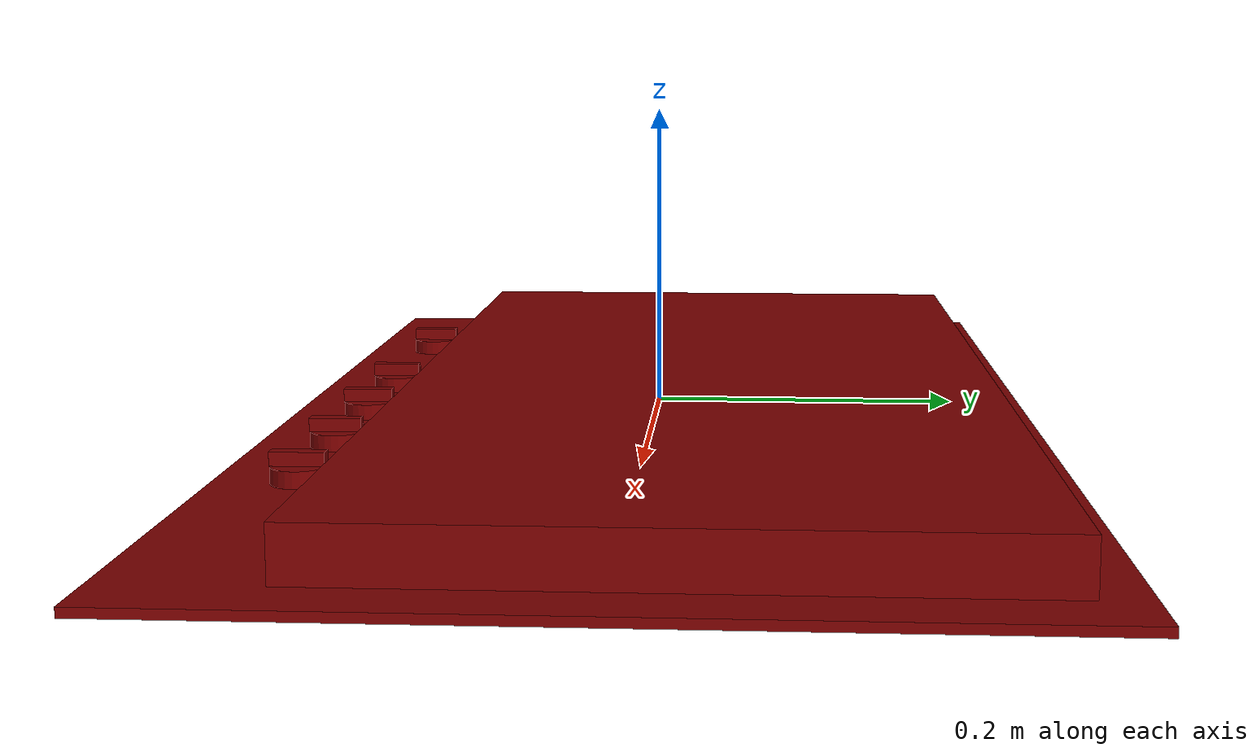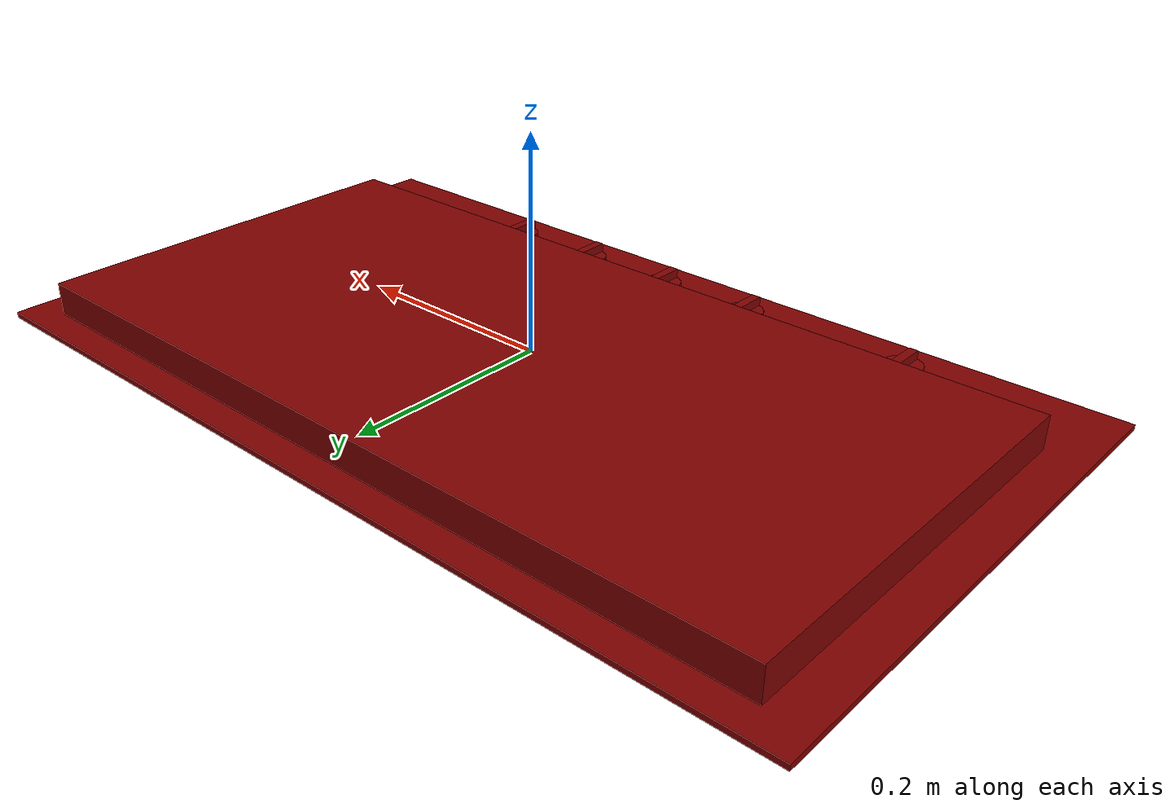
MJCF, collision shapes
<?xml version='1.0' encoding='UTF-8'?>
<mujoco model="model">
  <option timestep="0.002" gravity="0.0 0.0 -9.81"/>
  <compiler angle="radian"/>
  <asset>
    <mesh file="visuals/knob_front_center.obj" name="knob_front_center_vis"/>
    <mesh file="visuals/knob_front_left.obj" name="knob_front_left_vis"/>
    <mesh file="visuals/knob_front_right.obj" name="knob_front_right_vis"/>
    <mesh file="visuals/knob_rear_center.obj" name="knob_rear_center_vis"/>
    <mesh file="visuals/knob_rear_right.obj" name="knob_rear_right_vis"/>
    <mesh file="visuals/Body001.obj" name="Body001_vis"/>
    <mesh file="visuals/Body002.obj" name="Body002_vis"/>
    <texture file="visuals/T_BC001.png" name="Body001_material" type="2d"/>
    <material name="Body001_material" rgba="1 1 1 1.0" texture="Body001_material" shininess="0.141421377658844" specular="2"/>
    <texture file="visuals/T_BC001.png" name="knob_front_center_material" type="2d"/>
    <material name="knob_front_center_material" rgba="1 1 1 1.0" texture="knob_front_center_material" shininess="0.141421377658844" specular="2"/>
    <texture file="visuals/T_BC001.png" name="knob_front_right_material" type="2d"/>
    <material name="knob_front_right_material" rgba="1 1 1 1.0" texture="knob_front_right_material" shininess="0.141421377658844" specular="2"/>
    <texture file="visuals/T_BC001.png" name="knob_front_left_material" type="2d"/>
    <material name="knob_front_left_material" rgba="1 1 1 1.0" texture="knob_front_left_material" shininess="0.141421377658844" specular="2"/>
    <texture file="visuals/T_BC001.png" name="knob_rear_center_material" type="2d"/>
    <material name="knob_rear_center_material" rgba="1 1 1 1.0" texture="knob_rear_center_material" shininess="0.141421377658844" specular="2"/>
    <texture file="visuals/T_BC001.png" name="knob_rear_right_material" type="2d"/>
    <material name="knob_rear_right_material" rgba="1 1 1 1.0" texture="knob_rear_right_material" shininess="0.141421377658844" specular="2"/>
    <texture file="visuals/T_BC001.png" name="Body002_material" type="2d"/>
    <material name="Body002_material" rgba="1 1 1 1.0" texture="Body002_material" shininess="0.141421377658844" specular="3"/>
  </asset>
  <default>
    <default class="visual">
      <geom conaffinity="0" contype="0" group="1" type="mesh"/>
    </default>
    <default class="collision">
      <geom group="0" rgba="0.5 0 0 0.5"/>
    </default>
    <default class="spawn">
      <geom group="0" rgba="1 1 1 0.5" contype="0" conaffinity="0"/>
      <site group="0" rgba="1 1 1 0.5"/>
    </default>
    <default class="region">
      <geom group="1" conaffinity="0" contype="0" rgba="0 1 0 0"/>
    </default>
  </default>
  <worldbody>
    <body>
      <body name="object">
        <geom mesh="Body001_vis" type="mesh" solimp="0.998 0.998 0.001" solref="0.001 1" friction="0.95 0.3 0.1" class="visual" material="Body001_material"/>
        <geom class="collision" type="box" pos="0.00000006 -0.00000002 -0.01586059" size="0.4348243772983551 0.2561054229736328 0.0027121687307953835" quat="1.0 0.0 0.0 0.0"/>
        <body name="knob_front_center">
          <joint axis="0.0 0.0 1.0" pos="-0.08860774 -0.20187780 -0.00479958" limited="true" name="knob_front_center_joint" range="0.0 3.141592653589793" type="hinge" damping="0.2" armature="0.01" frictionloss="1"/>
          <geom mesh="knob_front_center_vis" type="mesh" solimp="0.998 0.998 0.001" solref="0.001 1" friction="0.95 0.3 0.1" class="visual" material="knob_front_center_material"/>
          <geom class="collision" type="cylinder" pos="-0.08855150 -0.20182903 -0.00693746" size="0.017744293436408043 0.005253618583083153" quat="1.0 0.0 0.0 0.0" friction="100 0.5 0.01"/>
          <geom class="collision" type="box" pos="-0.08873893 -0.20277908 0.00246668" size="0.004383993800729513 0.016681745648384094 0.004383993800729513" quat="1.0 0.0 0.0 0.0" name="knob_front_center_main" friction="100 0.5 0.01"/>
        </body>
        <body name="knob_front_right">
          <joint axis="0.0 0.0 1.0" pos="0.20029730 -0.20187780 -0.00479958" limited="true" name="knob_front_right_joint" range="0.0 3.141592653589793" type="hinge" damping="0.2" armature="0.01" frictionloss="1"/>
          <geom mesh="knob_front_right_vis" type="mesh" solimp="0.998 0.998 0.001" solref="0.001 1" friction="0.95 0.3 0.1" class="visual" material="knob_front_right_material"/>
          <geom class="collision" type="cylinder" pos="0.20039199 -0.20188098 -0.00693746" size="0.017744293436408043 0.005253618583083153" quat="1.0 0.0 0.0 0.0" friction="100 0.5 0.01"/>
          <geom class="collision" type="box" pos="0.20028491 -0.20277908 0.00246668" size="0.004383993800729513 0.0166817344725132 0.004383993800729513" quat="1.0 0.0 0.0 0.0" name="knob_front_right_main" friction="100 0.5 0.01"/>
        </body>
        <body name="knob_front_left">
          <joint axis="0.0 0.0 1.0" pos="-0.25301298 -0.20291024 -0.00479958" limited="true" name="knob_front_left_joint" range="0.0 3.141592653589793" type="hinge" damping="0.2" armature="0.01" frictionloss="1"/>
          <geom mesh="knob_front_left_vis" type="mesh" solimp="0.998 0.998 0.001" solref="0.001 1" friction="0.95 0.3 0.1" class="visual" material="knob_front_left_material"/>
          <geom class="collision" type="cylinder" pos="-0.25302294 -0.20293458 -0.00693746" size="0.017744293436408043 0.005253618583083153" quat="1.0 0.0 0.0 0.0" friction="100 0.5 0.01"/>
          <geom class="collision" type="box" pos="-0.25284389 -0.20277908 0.00246668" size="0.004383993800729513 0.016681749373674393 0.004383993800729513" quat="1.0 0.0 0.0 0.0" name="knob_front_left_main" friction="100 0.5 0.01"/>
        </body>
        <body name="knob_rear_center">
          <joint axis="0.0 0.0 1.0" pos="0.00867570 -0.20187780 -0.00479958" limited="true" name="knob_rear_center_joint" range="0.0 3.141592653589793" type="hinge" damping="0.2" armature="0.01" frictionloss="1"/>
          <geom mesh="knob_rear_center_vis" type="mesh" solimp="0.998 0.998 0.001" solref="0.001 1" friction="0.95 0.3 0.1" class="visual" material="knob_rear_center_material"/>
          <geom class="collision" type="cylinder" pos="0.00863272 -0.20188098 -0.00693746" size="0.017744293436408043 0.005253618583083153" quat="1.0 0.0 0.0 0.0" friction="100 0.5 0.01"/>
          <geom class="collision" type="box" pos="0.00878762 -0.20277908 0.00246668" size="0.004383993800729513 0.016681741923093796 0.004383993800729513" quat="1.0 0.0 0.0 0.0" name="knob_rear_center_main" friction="100 0.5 0.01"/>
        </body>
        <body name="knob_rear_right">
          <joint axis="0.0 0.0 1.0" pos="0.10490595 -0.20187780 -0.00479958" limited="true" name="knob_rear_right_joint" range="0.0 3.141592653589793" type="hinge" damping="0.2" armature="0.01" frictionloss="1"/>
          <geom mesh="knob_rear_right_vis" type="mesh" solimp="0.998 0.998 0.001" solref="0.001 1" friction="0.95 0.3 0.1" class="visual" material="knob_rear_right_material"/>
          <geom class="collision" type="cylinder" pos="0.10491404 -0.20188098 -0.00693746" size="0.017744293436408043 0.005253618583083153" quat="1.0 0.0 0.0 0.0" friction="100 0.5 0.01"/>
          <geom class="collision" type="box" pos="0.10534455 -0.20277908 0.00246668" size="0.004383993800729513 0.016681738197803497 0.004383993800729513" quat="1.0 0.0 0.0 0.0" name="knob_rear_right_main" friction="100 0.5 0.01"/>
        </body>
        <body name="Body002">
          <geom mesh="Body002_vis" type="mesh" solimp="0.998 0.998 0.001" solref="0.001 1" friction="0.95 0.3 0.1" class="visual" material="Body002_material"/>
          <geom class="collision" type="box" pos="0.00142054 0.03032379 0.00250207" size="0.39760228991508484 0.19730308651924133 0.016156746074557304" quat="1.0 0.0 0.0 0.0"/>
        </body>
        <site type="cylinder" rgba="0.3 0.4 1 0.5" size="0.038271479308605194 0.006743581034243107" pos="-0.00152290 0.11902973 0.00320395" name="burner_on_rear_center"/>
        <site type="cylinder" rgba="0.3 0.4 1 0.5" size="0.06837470084428787 0.007147748023271561" pos="-0.27523983 0.01557814 0.00308877" name="burner_on_front_left"/>
        <site type="cylinder" rgba="0.3 0.4 1 0.5" size="0.029570624232292175 0.006743579171597958" pos="0.27541465 -0.08983660 0.00320395" name="burner_on_front_right"/>
        <site type="cylinder" rgba="0.3 0.4 1 0.5" size="0.04360240325331688 0.006743581499904394" pos="0.27296332 0.11940359 0.00320395" name="burner_on_rear_right"/>
        <site type="cylinder" rgba="0.3 0.4 1 0.5" size="0.03697891905903816 0.006743584293872118" pos="0.00617123 -0.08876118 0.00320395" name="burner_on_front_center"/>
        <site type="cylinder" rgba="0.5 0 0 0" size="0.03697891905903816 4.999999873689376e-05" pos="0.00617123 -0.08876118 0.01855473" name="burner_front_center_place_site"/>
        <site type="cylinder" rgba="0.5 0 0 0" size="0.06837470084428787 4.999999873689376e-05" pos="-0.27523983 0.01557814 0.01855351" name="burner_front_left_place_site"/>
        <site type="cylinder" rgba="0.5 0 0 0" size="0.029570624232292175 4.999999873689376e-05" pos="0.27541465 -0.08983660 0.01855457" name="burner_front_right_place_site"/>
        <site type="cylinder" rgba="0.5 0 0 0" size="0.038271479308605194 4.999999873689376e-05" pos="-0.00152290 0.11902973 0.01855473" name="burner_rear_center_place_site"/>
        <site type="cylinder" rgba="0.5 0 0 0" size="0.04360240325331688 4.999999873689376e-05" pos="0.27296332 0.11940359 0.01855473" name="burner_rear_right_place_site"/>
        <geom class="region" name="reg_main" type="box" pos="9.999999994736442e-09 0.0 -0.014435845" size="0.43582444 0.25710548 0.0051369350000000005"/>
      </body>
    </body>
  </worldbody>
  <actuator>
    <motor name="knob_front_center_joint_actuator" joint="knob_front_center_joint" gear="10"/>
    <motor name="knob_front_right_joint_actuator" joint="knob_front_right_joint" gear="10"/>
    <motor name="knob_front_left_joint_actuator" joint="knob_front_left_joint" gear="10"/>
    <motor name="knob_rear_center_joint_actuator" joint="knob_rear_center_joint" gear="10"/>
    <motor name="knob_rear_right_joint_actuator" joint="knob_rear_right_joint" gear="10"/>
  </actuator>
</mujoco>
